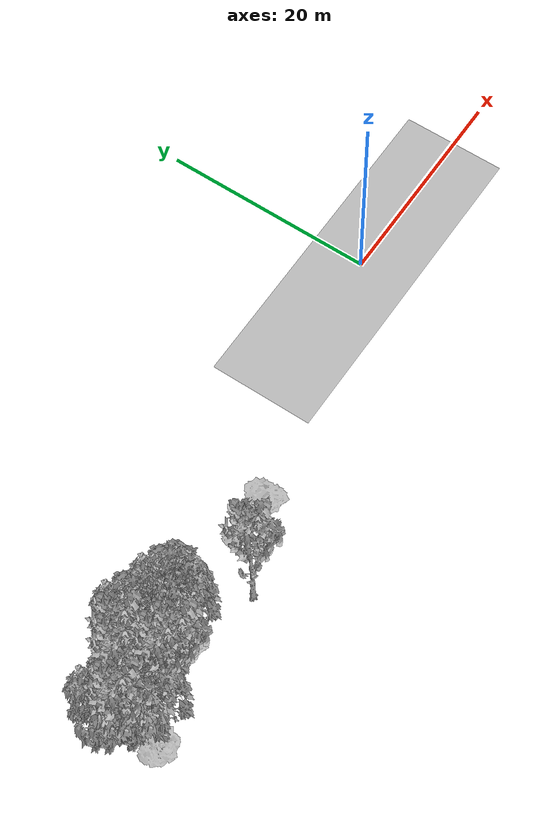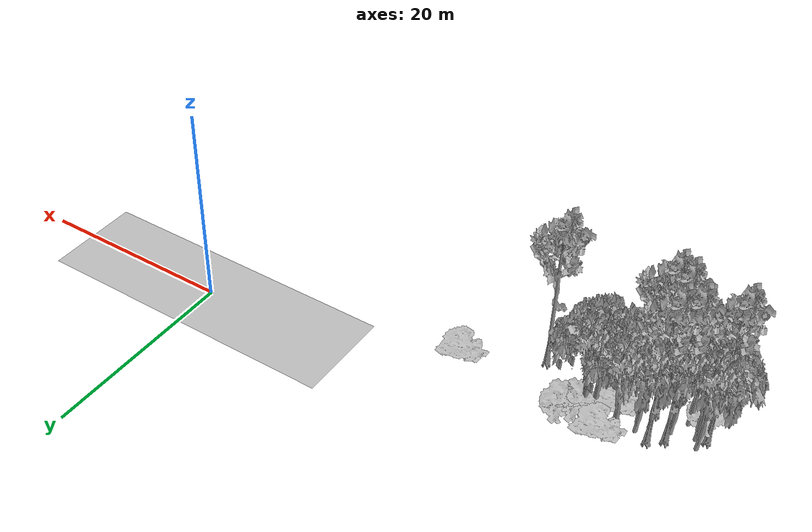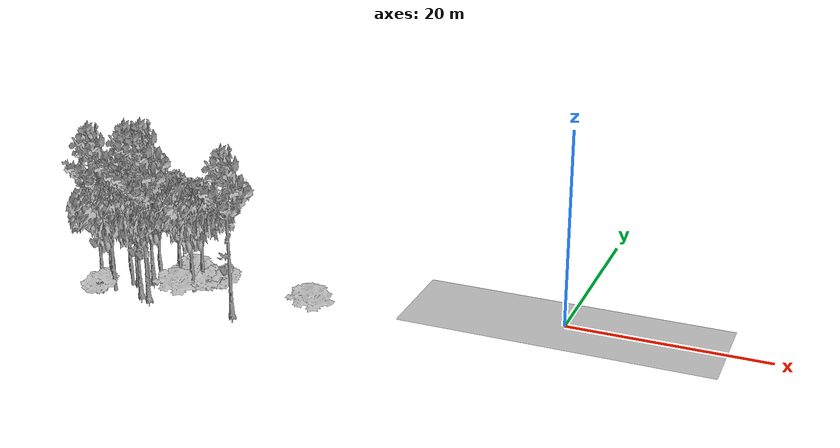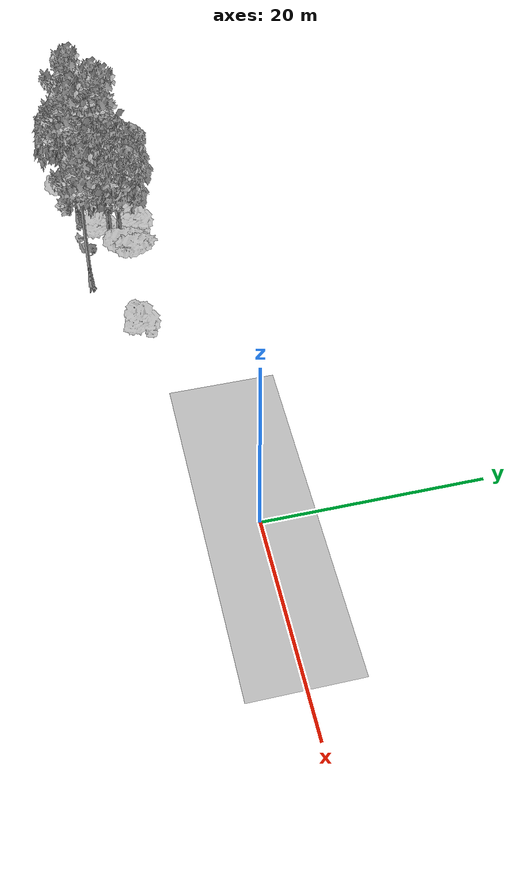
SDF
<sdf version="1.7">
 <world name="default">
  <model name="ground_plane">
   <static>1</static>
   <link name="link">
    <collision name="collision">
     <pose>-50 0 0 0 -0 0</pose>
     <geometry><plane><normal>0 0 1</normal><size>100 100</size></plane></geometry>
     <surface><contact><ode><min_depth>0.01</min_depth><max_vel>0</max_vel></ode></contact></surface>
    </collision>
    <visual name="grass">
     <cast_shadows>0</cast_shadows>
     <geometry>
      <mesh>
       <scale>0.5814285714285714 0.18142857142857144 0.1</scale>
       <uri>file://grass_plane/meshes/grass_plane.dae</uri>
      </mesh>
     </geometry>
    </visual>
   </link>
  </model>
  <model name="Tree 10">
   <static>1</static>
   <pose>-46.06153211407644 -10.663010434127743 0 1.57079 -0 0</pose>
   <link name="link">
    <collision name="collision">
     <geometry><mesh><scale>4 2.5 4</scale><uri>model://tree_1/meshes/tree_1.obj</uri></mesh></geometry>
    </collision>
    <visual name="visual">
     <geometry><mesh><scale>4 2.5 4</scale><uri>model://tree_1/meshes/tree_1.obj</uri></mesh></geometry>
    </visual>
   </link>
  </model>
  <model name="Tree 24">
   <static>1</static>
   <pose>-41.42882143700616 -6.527373647861509 0 1.57079 -0 0</pose>
   <link name="link">
    <collision name="collision">
     <geometry><mesh><scale>3.5 5 3.5</scale><uri>model://tree_2/meshes/tree_2.obj</uri></mesh></geometry>
    </collision>
    <visual name="visual">
     <geometry><mesh><scale>3.5 5 3.5</scale><uri>model://tree_2/meshes/tree_2.obj</uri></mesh></geometry>
    </visual>
   </link>
  </model>
  <model name="Tree 88">
   <static>1</static>
   <pose>-31.17770314107158 -9.89827131766426 0 1.57079 -0 0</pose>
   <link name="link">
    <collision name="collision">
     <geometry><mesh><scale>3.5 5 3.5</scale><uri>model://tree_9/meshes/tree_9.obj</uri></mesh></geometry>
    </collision>
    <visual name="visual">
     <geometry><mesh><scale>3.5 5 3.5</scale><uri>model://tree_9/meshes/tree_9.obj</uri></mesh></geometry>
    </visual>
   </link>
  </model>
  <model name="Tree 105">
   <static>1</static>
   <pose>-38.71115159455156 -8.162440606371655 0 1.57079 -0 0</pose>
   <link name="link">
    <collision name="collision">
     <geometry><mesh><scale>3 2 3</scale><uri>model://tree_3/meshes/tree_3.obj</uri></mesh></geometry>
    </collision>
    <visual name="visual">
     <geometry><mesh><scale>3 2 3</scale><uri>model://tree_3/meshes/tree_3.obj</uri></mesh></geometry>
    </visual>
   </link>
  </model>
  <model name="Tree 109">
   <static>1</static>
   <pose>-42.282229220781936 -7.566897258606387 0 1.57079 -0 0</pose>
   <link name="link">
    <collision name="collision">
     <geometry><mesh><scale>3.5 5 3.5</scale><uri>model://tree_2/meshes/tree_2.obj</uri></mesh></geometry>
    </collision>
    <visual name="visual">
     <geometry><mesh><scale>3.5 5 3.5</scale><uri>model://tree_2/meshes/tree_2.obj</uri></mesh></geometry>
    </visual>
   </link>
  </model>
  <model name="Tree 125">
   <static>1</static>
   <pose>-36.641800085270276 -6.106386375841938 0 1.57079 -0 0</pose>
   <link name="link">
    <collision name="collision">
     <geometry><mesh><scale>3.5 5 3.5</scale><uri>model://tree_2/meshes/tree_2.obj</uri></mesh></geometry>
    </collision>
    <visual name="visual">
     <geometry><mesh><scale>3.5 5 3.5</scale><uri>model://tree_2/meshes/tree_2.obj</uri></mesh></geometry>
    </visual>
   </link>
  </model>
  <model name="Tree 135">
   <static>1</static>
   <pose>-37.31754874247857 -7.0393382959216435 0 1.57079 -0 0</pose>
   <link name="link">
    <collision name="collision">
     <geometry><mesh><scale>3.5 5 3.5</scale><uri>model://tree_2/meshes/tree_2.obj</uri></mesh></geometry>
    </collision>
    <visual name="visual">
     <geometry><mesh><scale>3.5 5 3.5</scale><uri>model://tree_2/meshes/tree_2.obj</uri></mesh></geometry>
    </visual>
   </link>
  </model>
  <model name="Tree 136">
   <static>1</static>
   <pose>-44.87385030483577 -9.83475674506328 0 1.57079 -0 0</pose>
   <link name="link">
    <collision name="collision">
     <geometry><mesh><scale>3.5 5 3.5</scale><uri>model://tree_2/meshes/tree_2.obj</uri></mesh></geometry>
    </collision>
    <visual name="visual">
     <geometry><mesh><scale>3.5 5 3.5</scale><uri>model://tree_2/meshes/tree_2.obj</uri></mesh></geometry>
    </visual>
   </link>
  </model>
  <model name="Tree 185">
   <static>1</static>
   <pose>-46.04435751047077 -8.50214757138908 0 1.57079 -0 0</pose>
   <link name="link">
    <collision name="collision">
     <geometry><mesh><scale>3.5 5 3.5</scale><uri>model://tree_2/meshes/tree_2.obj</uri></mesh></geometry>
    </collision>
    <visual name="visual">
     <geometry><mesh><scale>3.5 5 3.5</scale><uri>model://tree_2/meshes/tree_2.obj</uri></mesh></geometry>
    </visual>
   </link>
  </model>
  <model name="Tree 193">
   <static>1</static>
   <pose>-24.47995963957694 -6.2641008733593075 0 1.57079 -0 0</pose>
   <link name="link">
    <collision name="collision">
     <geometry><mesh><scale>3 2 3</scale><uri>model://tree_3/meshes/tree_3.obj</uri></mesh></geometry>
    </collision>
    <visual name="visual">
     <geometry><mesh><scale>3 2 3</scale><uri>model://tree_3/meshes/tree_3.obj</uri></mesh></geometry>
    </visual>
   </link>
  </model>
  <model name="Tree 330">
   <static>1</static>
   <pose>-46.49647723868336 -7.581167641930728 0 1.57079 -0 0</pose>
   <link name="link">
    <collision name="collision">
     <geometry><mesh><scale>3.5 5 3.5</scale><uri>model://tree_2/meshes/tree_2.obj</uri></mesh></geometry>
    </collision>
    <visual name="visual">
     <geometry><mesh><scale>3.5 5 3.5</scale><uri>model://tree_2/meshes/tree_2.obj</uri></mesh></geometry>
    </visual>
   </link>
  </model>
  <model name="Tree 341">
   <static>1</static>
   <pose>-42.57488297702338 -6.145790020366698 0 1.57079 -0 0</pose>
   <link name="link">
    <collision name="collision">
     <geometry><mesh><scale>3.5 5 3.5</scale><uri>model://tree_9/meshes/tree_9.obj</uri></mesh></geometry>
    </collision>
    <visual name="visual">
     <geometry><mesh><scale>3.5 5 3.5</scale><uri>model://tree_9/meshes/tree_9.obj</uri></mesh></geometry>
    </visual>
   </link>
  </model>
  <model name="Tree 374">
   <static>1</static>
   <pose>-36.11835680926805 -5.877945394728741 0 1.57079 -0 0</pose>
   <link name="link">
    <collision name="collision">
     <geometry><mesh><scale>4 2.5 4</scale><uri>model://tree_1/meshes/tree_1.obj</uri></mesh></geometry>
    </collision>
    <visual name="visual">
     <geometry><mesh><scale>4 2.5 4</scale><uri>model://tree_1/meshes/tree_1.obj</uri></mesh></geometry>
    </visual>
   </link>
  </model>
  <model name="Tree 383">
   <static>1</static>
   <pose>-39.9536102443811 -5.113628790503048 0 1.57079 -0 0</pose>
   <link name="link">
    <collision name="collision">
     <geometry><mesh><scale>3.5 5 3.5</scale><uri>model://tree_2/meshes/tree_2.obj</uri></mesh></geometry>
    </collision>
    <visual name="visual">
     <geometry><mesh><scale>3.5 5 3.5</scale><uri>model://tree_2/meshes/tree_2.obj</uri></mesh></geometry>
    </visual>
   </link>
  </model>
  <model name="Tree 388">
   <static>1</static>
   <pose>-40.77667721741013 -9.908683321381313 0 1.57079 -0 0</pose>
   <link name="link">
    <collision name="collision">
     <geometry><mesh><scale>3.5 5 3.5</scale><uri>model://tree_9/meshes/tree_9.obj</uri></mesh></geometry>
    </collision>
    <visual name="visual">
     <geometry><mesh><scale>3.5 5 3.5</scale><uri>model://tree_9/meshes/tree_9.obj</uri></mesh></geometry>
    </visual>
   </link>
  </model>
  <model name="Tree 441">
   <static>1</static>
   <pose>-43.815889259337865 -7.105529871137771 0 1.57079 -0 0</pose>
   <link name="link">
    <collision name="collision">
     <geometry><mesh><scale>3.5 5 3.5</scale><uri>model://tree_9/meshes/tree_9.obj</uri></mesh></geometry>
    </collision>
    <visual name="visual">
     <geometry><mesh><scale>3.5 5 3.5</scale><uri>model://tree_9/meshes/tree_9.obj</uri></mesh></geometry>
    </visual>
   </link>
  </model>
  <model name="Tree 459">
   <static>1</static>
   <pose>-41.92423201021828 -9.505926673323538 0 1.57079 -0 0</pose>
   <link name="link">
    <collision name="collision">
     <geometry><mesh><scale>3.5 5 3.5</scale><uri>model://tree_9/meshes/tree_9.obj</uri></mesh></geometry>
    </collision>
    <visual name="visual">
     <geometry><mesh><scale>3.5 5 3.5</scale><uri>model://tree_9/meshes/tree_9.obj</uri></mesh></geometry>
    </visual>
   </link>
  </model>
  <model name="Tree 469">
   <static>1</static>
   <pose>-38.743511597574404 -4.506414486704818 0 1.57079 -0 0</pose>
   <link name="link">
    <collision name="collision">
     <geometry><mesh><scale>3 2 3</scale><uri>model://tree_3/meshes/tree_3.obj</uri></mesh></geometry>
    </collision>
    <visual name="visual">
     <geometry><mesh><scale>3 2 3</scale><uri>model://tree_3/meshes/tree_3.obj</uri></mesh></geometry>
    </visual>
   </link>
  </model>
  <model name="Tree 487">
   <static>1</static>
   <pose>-34.99733846854941 -4.980366500679057 0 1.57079 -0 0</pose>
   <link name="link">
    <collision name="collision">
     <geometry><mesh><scale>4 2.5 4</scale><uri>model://tree_1/meshes/tree_1.obj</uri></mesh></geometry>
    </collision>
    <visual name="visual">
     <geometry><mesh><scale>4 2.5 4</scale><uri>model://tree_1/meshes/tree_1.obj</uri></mesh></geometry>
    </visual>
   </link>
  </model>
  <model name="Tree 494">
   <static>1</static>
   <pose>-46.79303621466602 -9.05279721561758 0 1.57079 -0 0</pose>
   <link name="link">
    <collision name="collision">
     <geometry><mesh><scale>3.5 5 3.5</scale><uri>model://tree_9/meshes/tree_9.obj</uri></mesh></geometry>
    </collision>
    <visual name="visual">
     <geometry><mesh><scale>3.5 5 3.5</scale><uri>model://tree_9/meshes/tree_9.obj</uri></mesh></geometry>
    </visual>
   </link>
  </model>
  <model name="Tree 495">
   <static>1</static>
   <pose>-43.97884148242591 -8.013894672876969 0 1.57079 -0 0</pose>
   <link name="link">
    <collision name="collision">
     <geometry><mesh><scale>3.5 5 3.5</scale><uri>model://tree_2/meshes/tree_2.obj</uri></mesh></geometry>
    </collision>
    <visual name="visual">
     <geometry><mesh><scale>3.5 5 3.5</scale><uri>model://tree_2/meshes/tree_2.obj</uri></mesh></geometry>
    </visual>
   </link>
  </model>
  <model name="Bush 1">
   <static>1</static>
   <pose>-38.34219279883536 -6.022224309633824 0 1.57079 -0 0</pose>
   <link name="link">
    <collision name="collision">
     <geometry><mesh><scale>2 2 2</scale><uri>model://bush_2/meshes/bush_2.obj</uri></mesh></geometry>
     <surface><contact><collide_without_contact>false</collide_without_contact></contact></surface>
    </collision>
    <visual name="visual">
     <geometry><mesh><scale>2 2 2</scale><uri>model://bush_2/meshes/bush_2.obj</uri></mesh></geometry>
    </visual>
   </link>
  </model>
 </world>
</sdf>
